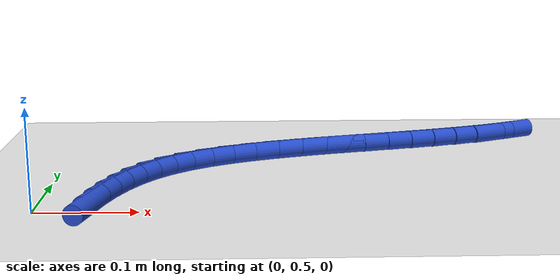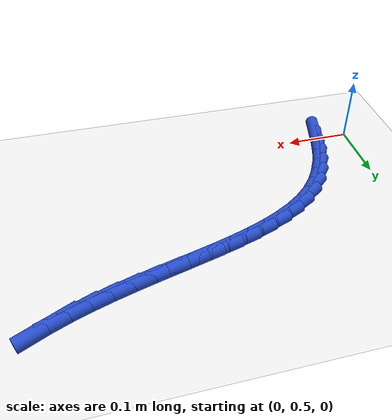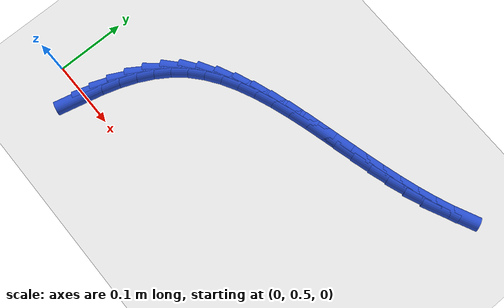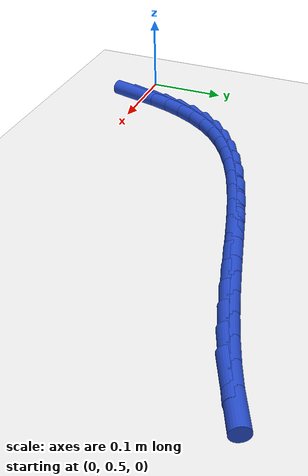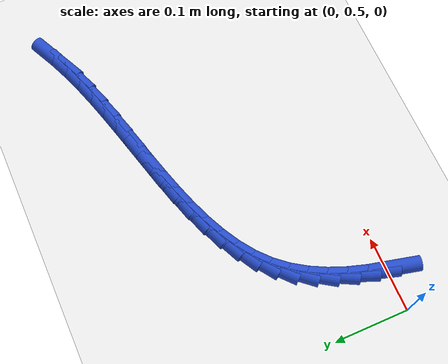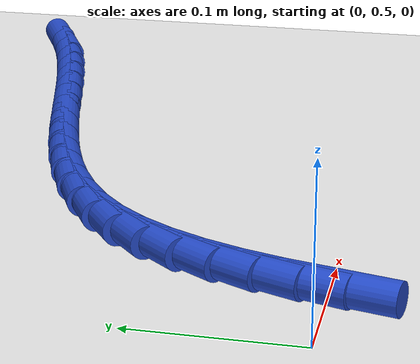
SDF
<sdf version="1.6">
 <world name="default">
  <model name="ground_plane">
   <static>1</static>
   <link name="link">
    <collision name="collision">
     <geometry><plane><normal>0 0 1</normal><size>100 100</size></plane></geometry>
     <surface><friction><ode><mu>100</mu><mu2>50</mu2></ode></friction></surface>
    </collision>
    <visual name="visual">
     <cast_shadows>0</cast_shadows>
     <geometry><plane><normal>0 0 1</normal><size>100 100</size></plane></geometry>
     <material>
      <script><uri>file://media/materials/scripts/gazebo.material</uri><name>Gazebo/WhiteGlow</name></script>
     </material>
    </visual>
   </link>
  </model>
  <model name="line">
   <link name="link_18">
    <pose>0.05487234173656505 0.4984643604265946 0.01 0 1.57 1.3336417228431299</pose>
    <collision name="collision">
     <geometry><cylinder><radius>0.01</radius><length>0.08</length></cylinder></geometry>
    </collision>
    <visual name="visual">
     <material>
      <script><name>Gazebo/Blue</name><uri>file://media/materials/scripts/gazebo.material</uri></script>
     </material>
     <geometry><cylinder><radius>0.01</radius><length>0.08</length></cylinder></geometry>
    </visual>
   </link>
   <link name="link_19">
    <pose>0.061188029932006276 0.5245943144481348 0.01 0 1.57 1.2683987625830184</pose>
    <collision name="collision">
     <geometry><cylinder><radius>0.01</radius><length>0.08</length></cylinder></geometry>
    </collision>
    <visual name="visual">
     <material>
      <script><name>Gazebo/Blue</name><uri>file://media/materials/scripts/gazebo.material</uri></script>
     </material>
     <geometry><cylinder><radius>0.01</radius><length>0.08</length></cylinder></geometry>
    </visual>
   </link>
   <link name="link_20">
    <pose>0.06896566830815998 0.5495254242382557 0.01 0 1.57 1.1891535085259686</pose>
    <collision name="collision">
     <geometry><cylinder><radius>0.01</radius><length>0.08</length></cylinder></geometry>
    </collision>
    <visual name="visual">
     <material>
      <script><name>Gazebo/Blue</name><uri>file://media/materials/scripts/gazebo.material</uri></script>
     </material>
     <geometry><cylinder><radius>0.01</radius><length>0.08</length></cylinder></geometry>
    </visual>
   </link>
   <link name="link_21">
    <pose>0.07841556351546797 0.5730725232421989 0.01 0 1.57 1.0947236597595906</pose>
    <collision name="collision">
     <geometry><cylinder><radius>0.01</radius><length>0.08</length></cylinder></geometry>
    </collision>
    <visual name="visual">
     <material>
      <script><name>Gazebo/Blue</name><uri>file://media/materials/scripts/gazebo.material</uri></script>
     </material>
     <geometry><cylinder><radius>0.01</radius><length>0.08</length></cylinder></geometry>
    </visual>
   </link>
   <link name="link_22">
    <pose>0.08974802220437207 0.5950504449052061 0.01 0 1.57 0.9847494606015553</pose>
    <collision name="collision">
     <geometry><cylinder><radius>0.01</radius><length>0.08</length></cylinder></geometry>
    </collision>
    <visual name="visual">
     <material>
      <script><name>Gazebo/Blue</name><uri>file://media/materials/scripts/gazebo.material</uri></script>
     </material>
     <geometry><cylinder><radius>0.01</radius><length>0.08</length></cylinder></geometry>
    </visual>
   </link>
   <link name="link_23">
    <pose>0.10317335102531411 0.6152740226725182 0.01 0 1.57 0.8603930453724324</pose>
    <collision name="collision">
     <geometry><cylinder><radius>0.01</radius><length>0.08</length></cylinder></geometry>
    </collision>
    <visual name="visual">
     <material>
      <script><name>Gazebo/Blue</name><uri>file://media/materials/scripts/gazebo.material</uri></script>
     </material>
     <geometry><cylinder><radius>0.01</radius><length>0.08</length></cylinder></geometry>
    </visual>
   </link>
   <link name="link_24">
    <pose>0.11890185662873592 0.6335580899893772 0.01 0 1.57 0.7275257642742753</pose>
    <collision name="collision">
     <geometry><cylinder><radius>0.01</radius><length>0.08</length></cylinder></geometry>
    </collision>
    <visual name="visual">
     <material>
      <script><name>Gazebo/Blue</name><uri>file://media/materials/scripts/gazebo.material</uri></script>
     </material>
     <geometry><cylinder><radius>0.01</radius><length>0.08</length></cylinder></geometry>
    </visual>
   </link>
   <link name="link_25">
    <pose>0.13709441036242065 0.6497580418643729 0.01 0 1.57 0.6076032303712647</pose>
    <collision name="collision">
     <geometry><cylinder><radius>0.01</radius><length>0.08</length></cylinder></geometry>
    </collision>
    <visual name="visual">
     <material>
      <script><name>Gazebo/Blue</name><uri>file://media/materials/scripts/gazebo.material</uri></script>
     </material>
     <geometry><cylinder><radius>0.01</radius><length>0.08</length></cylinder></geometry>
    </visual>
   </link>
   <link name="link_26">
    <pose>0.15757916730137017 0.6640022663181729 0.01 0 1.57 0.5087072947108857</pose>
    <collision name="collision">
     <geometry><cylinder><radius>0.01</radius><length>0.08</length></cylinder></geometry>
    </collision>
    <visual name="visual">
     <material>
      <script><name>Gazebo/Blue</name><uri>file://media/materials/scripts/gazebo.material</uri></script>
     </material>
     <geometry><cylinder><radius>0.01</radius><length>0.08</length></cylinder></geometry>
    </visual>
   </link>
   <link name="link_27">
    <pose>0.18004703717224638 0.6765317608952389 0.01 0 1.57 0.4294636729440346</pose>
    <collision name="collision">
     <geometry><cylinder><radius>0.01</radius><length>0.08</length></cylinder></geometry>
    </collision>
    <visual name="visual">
     <material>
      <script><name>Gazebo/Blue</name><uri>file://media/materials/scripts/gazebo.material</uri></script>
     </material>
     <geometry><cylinder><radius>0.01</radius><length>0.08</length></cylinder></geometry>
    </visual>
   </link>
   <link name="link_28">
    <pose>0.204188499708276 0.6875878759487554 0.01 0 1.57 0.3676609509822385</pose>
    <collision name="collision">
     <geometry><cylinder><radius>0.01</radius><length>0.08</length></cylinder></geometry>
    </collision>
    <visual name="visual">
     <material>
      <script><name>Gazebo/Blue</name><uri>file://media/materials/scripts/gazebo.material</uri></script>
     </material>
     <geometry><cylinder><radius>0.01</radius><length>0.08</length></cylinder></geometry>
    </visual>
   </link>
   <link name="link_29">
    <pose>0.22969403464268548 0.6974119618319061 0.01 0 1.57 0.3210742084700685</pose>
    <collision name="collision">
     <geometry><cylinder><radius>0.01</radius><length>0.08</length></cylinder></geometry>
    </collision>
    <visual name="visual">
     <material>
      <script><name>Gazebo/Blue</name><uri>file://media/materials/scripts/gazebo.material</uri></script>
     </material>
     <geometry><cylinder><radius>0.01</radius><length>0.08</length></cylinder></geometry>
    </visual>
   </link>
   <link name="link_30">
    <pose>0.25625412170870177 0.7062453688978766 0.01 0 1.57 0.287842419389166</pose>
    <collision name="collision">
     <geometry><cylinder><radius>0.01</radius><length>0.08</length></cylinder></geometry>
    </collision>
    <visual name="visual">
     <material>
      <script><name>Gazebo/Blue</name><uri>file://media/materials/scripts/gazebo.material</uri></script>
     </material>
     <geometry><cylinder><radius>0.01</radius><length>0.08</length></cylinder></geometry>
    </visual>
   </link>
   <link name="link_31">
    <pose>0.2835592406395512 0.7143294474998498 0.01 0 1.57 0.2666034444324147</pose>
    <collision name="collision">
     <geometry><cylinder><radius>0.01</radius><length>0.08</length></cylinder></geometry>
    </collision>
    <visual name="visual">
     <material>
      <script><name>Gazebo/Blue</name><uri>file://media/materials/scripts/gazebo.material</uri></script>
     </material>
     <geometry><cylinder><radius>0.01</radius><length>0.08</length></cylinder></geometry>
    </visual>
   </link>
   <link name="link_32">
    <pose>0.31129987116846064 0.7219055479910109 0.01 0 1.57 0.2565231554013573</pose>
    <collision name="collision">
     <geometry><cylinder><radius>0.01</radius><length>0.08</length></cylinder></geometry>
    </collision>
    <visual name="visual">
     <material>
      <script><name>Gazebo/Blue</name><uri>file://media/materials/scripts/gazebo.material</uri></script>
     </material>
     <geometry><cylinder><radius>0.01</radius><length>0.08</length></cylinder></geometry>
    </visual>
   </link>
   <link name="link_33">
    <pose>0.3391664930286564 0.7292150207245438 0.01 0 1.57 0.25721990161455327</pose>
    <collision name="collision">
     <geometry><cylinder><radius>0.01</radius><length>0.08</length></cylinder></geometry>
    </collision>
    <visual name="visual">
     <material>
      <script><name>Gazebo/Blue</name><uri>file://media/materials/scripts/gazebo.material</uri></script>
     </material>
     <geometry><cylinder><radius>0.01</radius><length>0.08</length></cylinder></geometry>
    </visual>
   </link>
   <link name="link_34">
    <pose>0.3668546720123698 0.7364983102377841 0.01 0 1.57 0.26726730462012144</pose>
    <collision name="collision">
     <geometry><cylinder><radius>0.01</radius><length>0.08</length></cylinder></geometry>
    </collision>
    <visual name="visual">
     <material>
      <script><name>Gazebo/Blue</name><uri>file://media/materials/scripts/gazebo.material</uri></script>
     </material>
     <geometry><cylinder><radius>0.01</radius><length>0.08</length></cylinder></geometry>
    </visual>
   </link>
   <link name="link_35">
    <pose>0.3941667195460615 0.7439768499069268 0.01 0 1.57 0.2854745074267307</pose>
    <collision name="collision">
     <geometry><cylinder><radius>0.01</radius><length>0.08</length></cylinder></geometry>
    </collision>
    <visual name="visual">
     <material>
      <script><name>Gazebo/Blue</name><uri>file://media/materials/scripts/gazebo.material</uri></script>
     </material>
     <geometry><cylinder><radius>0.01</radius><length>0.08</length></cylinder></geometry>
    </visual>
   </link>
   <link name="link_36">
    <pose>0.4210062990281519 0.7518540225463364 0.01 0 1.57 0.31213653816001685</pose>
    <collision name="collision">
     <geometry><cylinder><radius>0.01</radius><length>0.08</length></cylinder></geometry>
    </collision>
    <visual name="visual">
     <material>
      <script><name>Gazebo/Blue</name><uri>file://media/materials/scripts/gazebo.material</uri></script>
     </material>
     <geometry><cylinder><radius>0.01</radius><length>0.08</length></cylinder></geometry>
    </visual>
   </link>
   <link name="link_37">
    <pose>0.44728108027442864 0.7603324974363145 0.01 0 1.57 0.3476306047556478</pose>
    <collision name="collision">
     <geometry><cylinder><radius>0.01</radius><length>0.08</length></cylinder></geometry>
    </collision>
    <visual name="visual">
     <material>
      <script><name>Gazebo/Blue</name><uri>file://media/materials/scripts/gazebo.material</uri></script>
     </material>
     <geometry><cylinder><radius>0.01</radius><length>0.08</length></cylinder></geometry>
    </visual>
   </link>
   <link name="link_38">
    <pose>0.472898733100679 0.7696149438571622 0.01 0 1.57 0.39229894244862284</pose>
    <collision name="collision">
     <geometry><cylinder><radius>0.01</radius><length>0.08</length></cylinder></geometry>
    </collision>
    <visual name="visual">
     <material>
      <script><name>Gazebo/Blue</name><uri>file://media/materials/scripts/gazebo.material</uri></script>
     </material>
     <geometry><cylinder><radius>0.01</radius><length>0.08</length></cylinder></geometry>
    </visual>
   </link>
   <link name="link_39">
    <pose>0.4977669273226901 0.7799040310891805 0.01 0 1.57 0.4463598285599928</pose>
    <collision name="collision">
     <geometry><cylinder><radius>0.01</radius><length>0.08</length></cylinder></geometry>
    </collision>
    <visual name="visual">
     <material>
      <script><name>Gazebo/Blue</name><uri>file://media/materials/scripts/gazebo.material</uri></script>
     </material>
     <geometry><cylinder><radius>0.01</radius><length>0.08</length></cylinder></geometry>
    </visual>
   </link>
  </model>
 </world>
</sdf>
